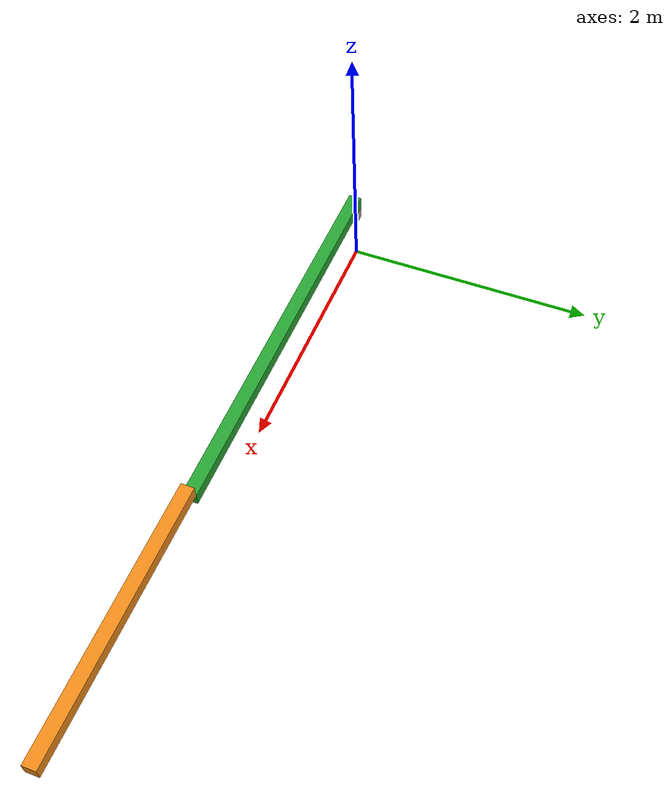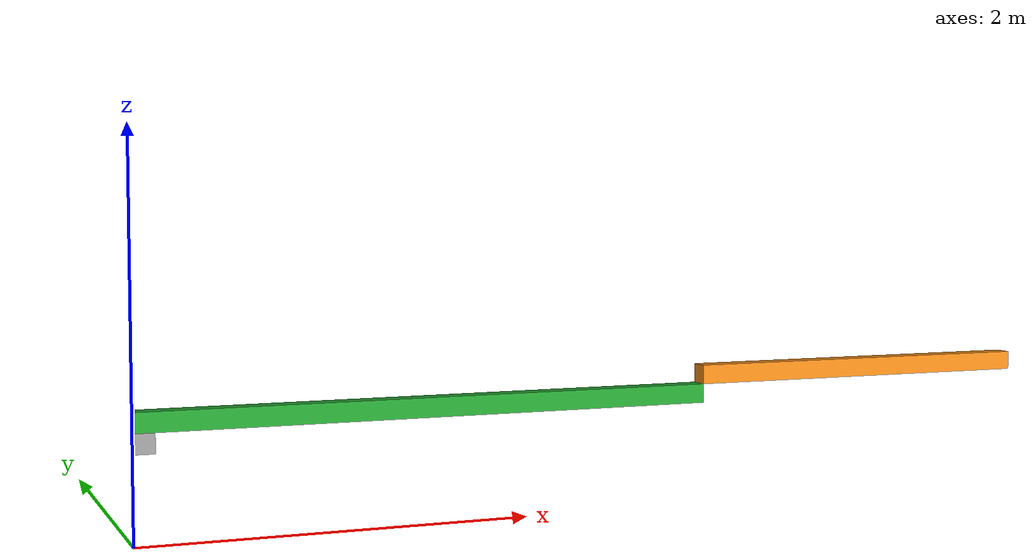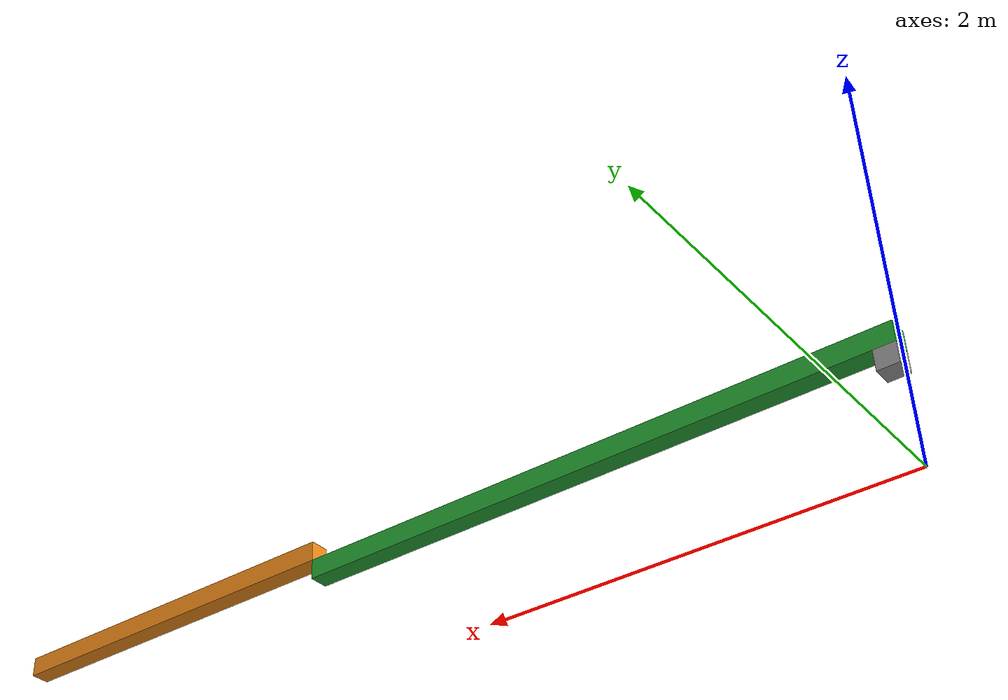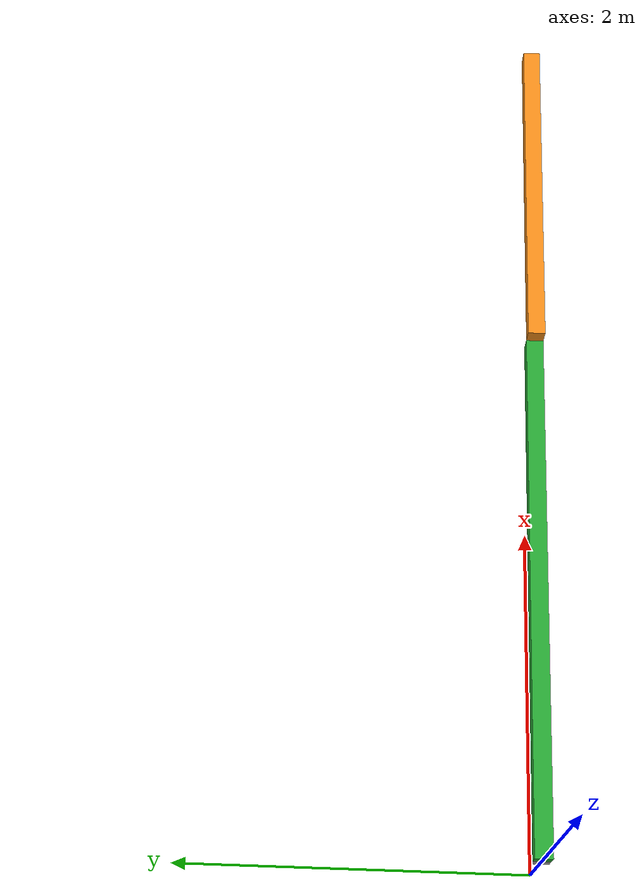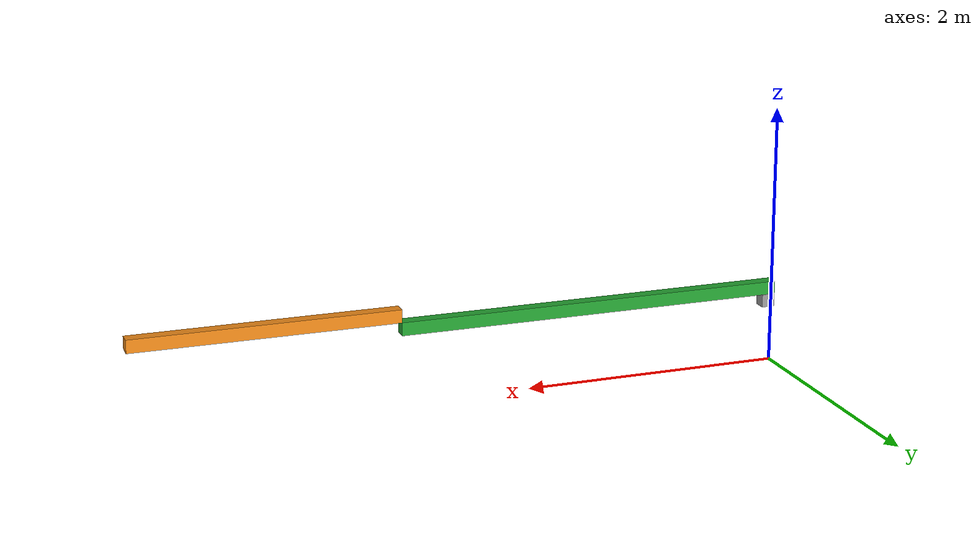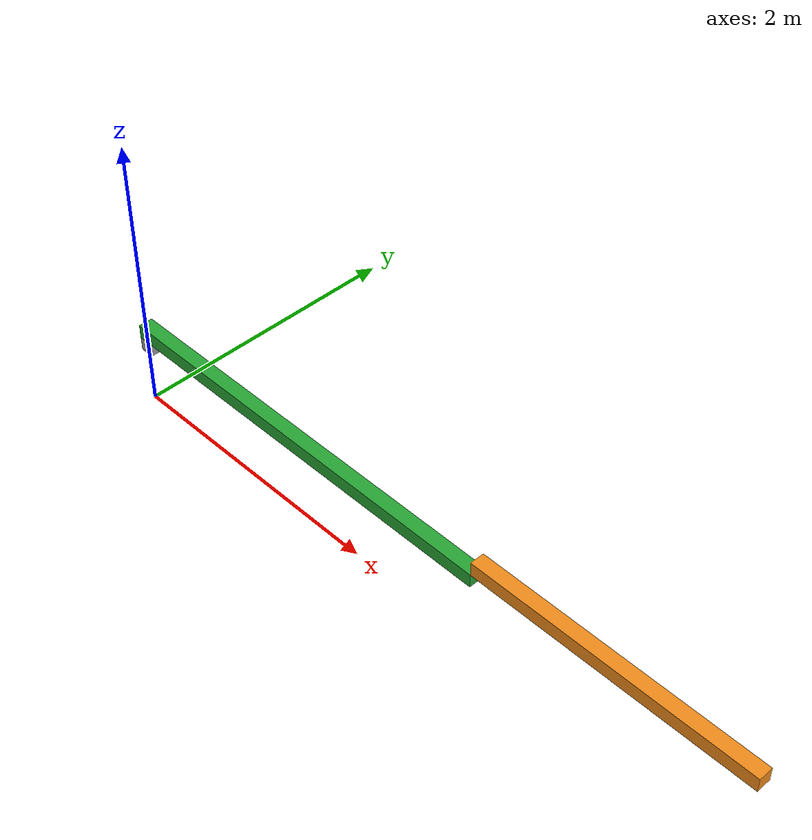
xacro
<?xml version="1.0"?>
<robot name="acrobat" xmlns:xacro="http://www.ros.org/wiki/xacro">

  <!-- Math properties -->
  <xacro:property name="PI" value="3.141592653589793" />

  <!-- common link properties -->
  <xacro:property name="link_mass" value="0.1" /> <!-- arbitrary value for mass -->
  <xacro:property name="link_width" value="0.1" /> <!-- link square dimensions (link_widthxlink_width) -->

  <!-- link1 properties -->
  <xacro:property name="link1_name" value="link1" />
  <xacro:property name="link1_height" value="${link_width}" />
  <xacro:property name="link1_color" value="grey" />

  <!-- link2 properties -->
  <xacro:property name="link2_name" value="link2" />
  <xacro:property name="link2_height" value="3.0" />
  <xacro:property name="link2_color" value="green" />

  <!-- link3 properties -->
  <xacro:property name="link3_name" value="link3" />
  <xacro:property name="link3_height" value="2.0" />
  <xacro:property name="link3_color" value="orange" />

  <!-- common joint properties -->
  <xacro:property name="joint_lower_limit" value="${-PI / 2.0}" />
  <xacro:property name="joint_upper_limit" value="${PI / 2.0}" />
  <xacro:property name="joint_effort" value="100.0" />
  <xacro:property name="joint_velocity" value="1.0" />

  <!-- Import Rviz colors -->
  <xacro:include filename="$(find acrobat_description)/urdf/materials.urdf.xacro" />

  <!-- inertia macro -->
  <xacro:macro name="box_inertial_with_origin" params="x y z mass *origin">
    <inertial>
      <mass value="${mass}" />
      <xacro:insert_block name="origin" />
      <inertia ixx="${0.0833333 * mass * (y*y + z*z)}" ixy="0.0" ixz="0.0"
        iyy="${0.0833333 * mass * (x*x + z*z)}" iyz="0.0"
        izz="${0.0833333 * mass * (x*x + y*y)}" />
    </inertial>
  </xacro:macro>

  <!-- link macro -->
  <xacro:macro name="link_macro" params="link_name link_height link_color">
    <link name="${link_name}">
      <visual>
        <origin xyz="${link_height/2} 0 0" rpy="0 0 0"/>
        <geometry>
          <box size="${link_height} ${link_width} ${link_width}"/>
        </geometry>
        <material name="${link_color}"/>
      </visual>

      <collision>
        <origin xyz="${link_height/2} 0 0" rpy="0 0 0"/>
        <geometry>
          <box size="${link_height} ${link_width} ${link_width}"/>
        </geometry>
      </collision>

      <!-- use macro to compute inertia-->
      <xacro:box_inertial_with_origin x="${link_width}" y="${link_width}" z="${link_width}" mass="${link_mass}" >
        <origin xyz="0 0 0" rpy="0 0 0" />
      </xacro:box_inertial_with_origin>
    </link>
  </xacro:macro>

  <!-- joint macro -->
  <xacro:macro name="joint_macro" params="joint_name parent_link child_link *origin">
    <joint name="${joint_name}" type="revolute">
      <xacro:insert_block name="origin" />
      <parent link="${parent_link}"/>
      <child link="${child_link}"/>
      <axis xyz="0 0 1"/>
      <limit effort="${joint_effort}" lower="${joint_lower_limit}" upper="${joint_upper_limit}" velocity="${joint_velocity}"/>
    </joint>

    <transmission name="${joint_name}_trans">
      <type>transmission_interface/SimpleTransmission</type>
      <joint name="${joint_name}">
        <hardwareInterface>hardware_interface/VelocityJointInterface</hardwareInterface>
      </joint>
      <actuator name="${joint_name}_actuator">
        <mechanicalReduction>1</mechanicalReduction>
      </actuator>
    </transmission>
  </xacro:macro>

  <!-- link 0 -->
  <link name="world"/>

  <!-- links 1, 2, 3 -->
  <xacro:link_macro link_name="${link1_name}" link_height="${link1_height}" link_color="${link1_color}" />
  <xacro:link_macro link_name="${link2_name}" link_height="${link2_height}" link_color="${link2_color}" />
  <xacro:link_macro link_name="${link3_name}" link_height="${link3_height}" link_color="${link3_color}" />

  <!-- joint0 -->
  <joint name="joint0" type="fixed">
    <parent link="world"/>
    <child link="${link1_name}"/>
    <origin xyz="0 0 0.5" rpy="0 0 0"/>
  </joint>

  <!-- joints 1, 2 -->
  <xacro:joint_macro joint_name="joint1" parent_link="${link1_name}" child_link="${link2_name}" >
    <origin xyz="0 0 ${link_width}" rpy="0 0 0"/>
  </xacro:joint_macro>

  <xacro:joint_macro joint_name="joint2" parent_link="${link2_name}" child_link="${link3_name}" >
    <origin xyz="${link2_height} 0 ${link_width}" rpy="0 0 0"/>
  </xacro:joint_macro>

  <!-- gazebo related tags -->
  <xacro:include filename="$(find acrobat_description)/urdf/acrobat_gazebo.urdf.xacro" />

</robot>
